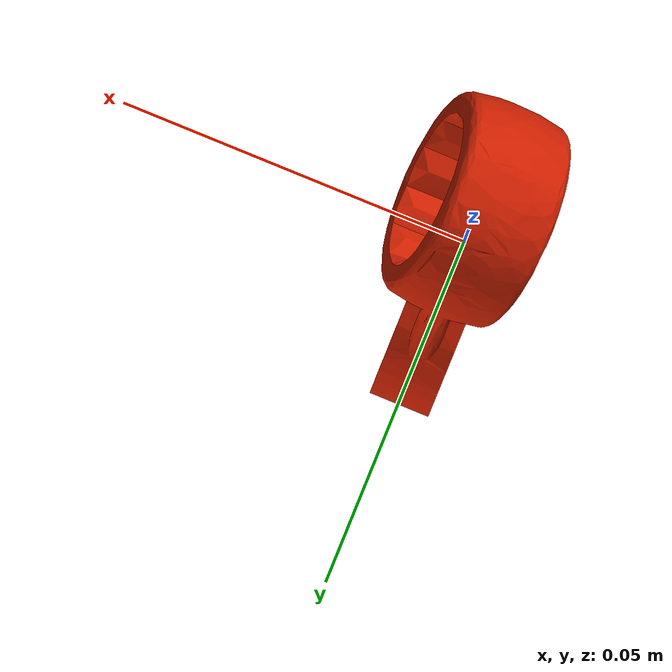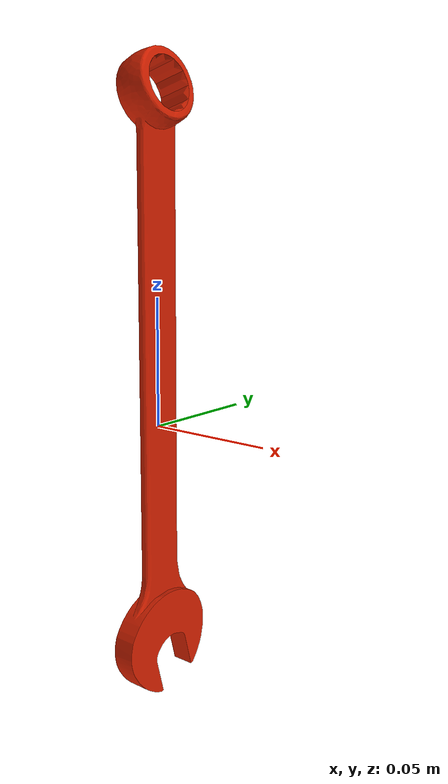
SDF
<?xml version="1.0"?>
<sdf version="1.7">
  <model name="combination_wrench_18mm_bright">
    <pose>0 0 0 0 0 0</pose>
    <static>false</static>
    <link name="link">
      <!-- link frame = tool CoM; Z = long axis (+ toward tool end), X = forward, Y = Z x X -->
      <inertial>
        <pose>0 0 0 0 0 0</pose>
        <mass>0.220907</mass>
        <inertia>
          <ixx>1.468662e-03</ixx>
          <ixy>-7.121681e-22</ixy>
          <ixz>-5.951257e-22</ixz>
          <iyy>1.453277e-03</iyy>
          <iyz>2.609218e-22</iyz>
          <izz>1.802096e-05</izz>
        </inertia>
      </inertial>
      <collision name="collision">
        <geometry>
          <mesh>
            <uri>model://combination_wrench_18mm/meshes/combination_wrench_18mm.dae</uri>
          </mesh>
        </geometry>
      </collision>
      <visual name="visual">
        <geometry>
          <mesh>
            <uri>model://combination_wrench_18mm/meshes/combination_wrench_18mm.dae</uri>
          </mesh>
        </geometry>
        <material>
          <ambient>0.369 0.055 0.000 1.0</ambient>
          <diffuse>0.820 0.123 0.000 1.0</diffuse>
          <specular>0.85 0.85 0.85 1.0</specular>
          <emissive>0 0 0 1.0</emissive>
        </material>
      </visual>
    </link>
  </model>
</sdf>
